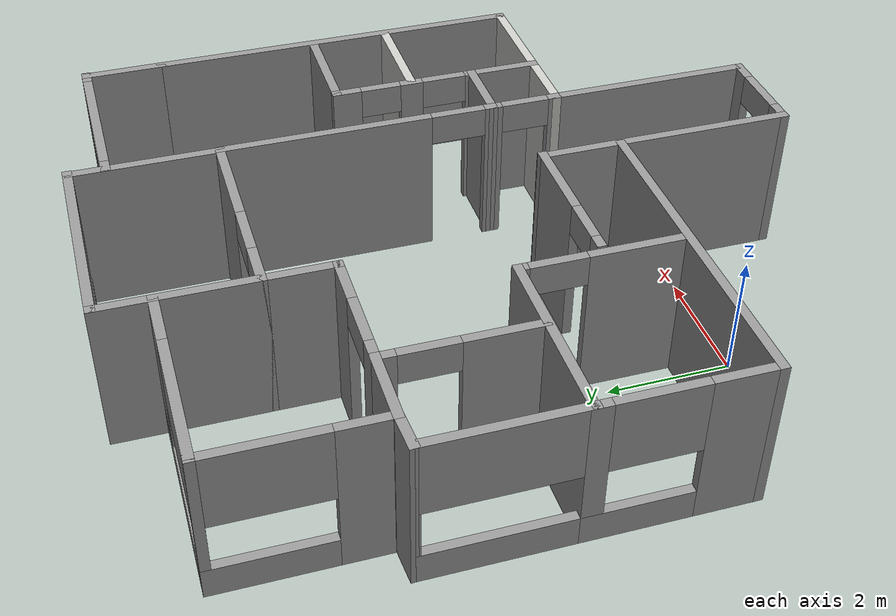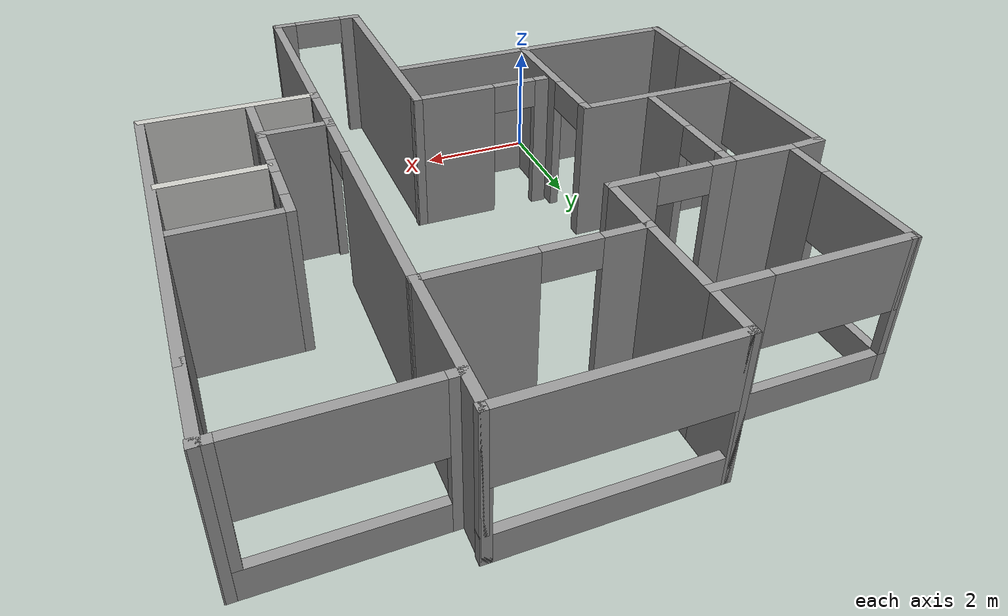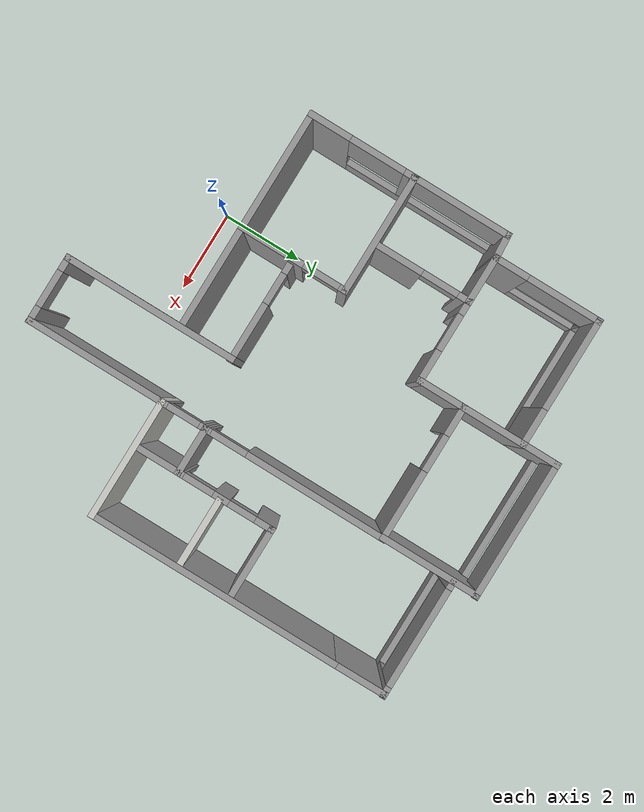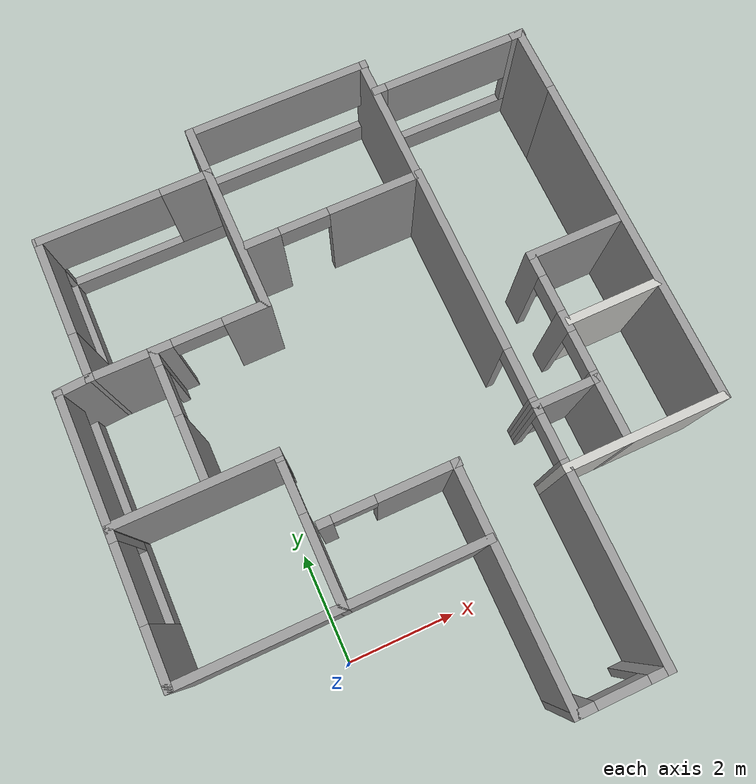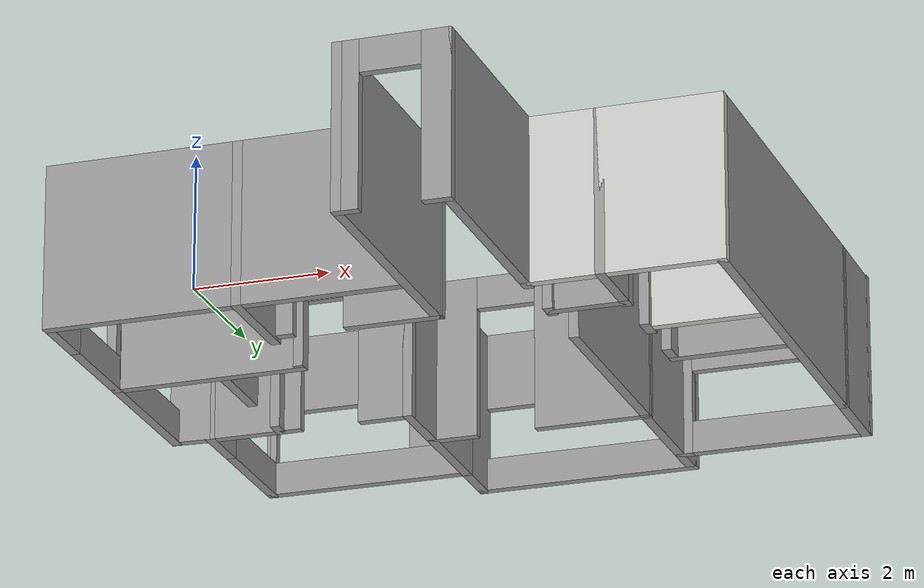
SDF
<?xml version='1.0'?>
<sdf version='1.6'>
  <model name='condo'>
    <pose frame=''>2.37557 3.63232 0 0 -0 0</pose>
    <link name='Wall_10'>
      <collision name='Wall_10_Collision'>
        <geometry>
          <box>
            <size>3 0.15 2.5</size>
          </box>
        </geometry>
        <pose frame=''>0 0 1.25 0 -0 0</pose>
      </collision>
      <visual name='Wall_10_Visual'>
        <pose frame=''>0 0 1.25 0 -0 0</pose>
        <geometry>
          <box>
            <size>3 0.15 2.5</size>
          </box>
        </geometry>
        <material>
          <script>
            <uri>file://media/materials/scripts/gazebo.material</uri>
            <name>Gazebo/CeilingTiled</name>
          </script>
          <ambient>1 1 1 1</ambient>
        </material>
        <meta>
          <layer>0</layer>
        </meta>
      </visual>
      <pose frame=''>3.4729 -2.30371 0 0 -0 3.14159</pose>
    </link>
    <link name='Wall_11'>
      <collision name='Wall_11_Collision'>
        <geometry>
          <box>
            <size>3.48 0.15 2.5</size>
          </box>
        </geometry>
        <pose frame=''>0 0 1.25 0 -0 0</pose>
      </collision>
      <visual name='Wall_11_Visual'>
        <pose frame=''>0 0 1.25 0 -0 0</pose>
        <geometry>
          <box>
            <size>3.48 0.15 2.5</size>
          </box>
        </geometry>
        <material>
          <script>
            <uri>file://media/materials/scripts/gazebo.material</uri>
            <name>Gazebo/Grey</name>
          </script>
          <ambient>1 1 1 1</ambient>
        </material>
        <meta>
          <layer>0</layer>
        </meta>
      </visual>
      <pose frame=''>2.0479 -3.96871 0 0 0 -1.5708</pose>
    </link>
    <link name='Wall_18'>
      <pose frame=''>-4.9021 -1.50371 0 0 -0 1.5708</pose>
      <visual name='Wall_18_Visual_0'>
        <pose frame=''>-0.841968 0 1.25 0 -0 0</pose>
        <geometry>
          <box>
            <size>1.06606 0.15 2.5</size>
          </box>
        </geometry>
        <material>
          <script>
            <uri>file://media/materials/scripts/gazebo.material</uri>
            <name>Gazebo/Grey</name>
          </script>
          <ambient>1 1 1 1</ambient>
        </material>
        <meta>
          <layer>0</layer>
        </meta>
      </visual>
      <collision name='Wall_18_Collision_0'>
        <geometry>
          <box>
            <size>1.06606 0.15 2.5</size>
          </box>
        </geometry>
        <pose frame=''>-0.841968 0 1.25 0 -0 0</pose>
      </collision>
      <visual name='Wall_18_Visual_1'>
        <pose frame=''>0.533032 0 0.25 0 -0 0</pose>
        <geometry>
          <box>
            <size>1.68394 0.15 0.5</size>
          </box>
        </geometry>
        <material>
          <script>
            <uri>file://media/materials/scripts/gazebo.material</uri>
            <name>Gazebo/Grey</name>
          </script>
          <ambient>1 1 1 1</ambient>
        </material>
        <meta>
          <layer>0</layer>
        </meta>
      </visual>
      <collision name='Wall_18_Collision_1'>
        <geometry>
          <box>
            <size>1.68394 0.15 0.5</size>
          </box>
        </geometry>
        <pose frame=''>0.533032 0 0.25 0 -0 0</pose>
      </collision>
      <visual name='Wall_18_Visual_2'>
        <pose frame=''>1.21129 0 1.5 0 -0 0</pose>
        <geometry>
          <box>
            <size>0.327415 0.15 2</size>
          </box>
        </geometry>
        <material>
          <script>
            <uri>file://media/materials/scripts/gazebo.material</uri>
            <name>Gazebo/Grey</name>
          </script>
          <ambient>1 1 1 1</ambient>
        </material>
        <meta>
          <layer>0</layer>
        </meta>
      </visual>
      <collision name='Wall_18_Collision_2'>
        <geometry>
          <box>
            <size>0.327415 0.15 2</size>
          </box>
        </geometry>
        <pose frame=''>1.21129 0 1.5 0 -0 0</pose>
      </collision>
      <visual name='Wall_18_Visual_3'>
        <pose frame=''>0.369324 0 1.9 0 -0 0</pose>
        <geometry>
          <box>
            <size>1.35652 0.15 1.2</size>
          </box>
        </geometry>
        <material>
          <script>
            <uri>file://media/materials/scripts/gazebo.material</uri>
            <name>Gazebo/Grey</name>
          </script>
          <ambient>1 1 1 1</ambient>
        </material>
        <meta>
          <layer>0</layer>
        </meta>
      </visual>
      <collision name='Wall_18_Collision_3'>
        <geometry>
          <box>
            <size>1.35652 0.15 1.2</size>
          </box>
        </geometry>
        <pose frame=''>0.369324 0 1.9 0 -0 0</pose>
      </collision>
    </link>
    <link name='Wall_19'>
      <collision name='Wall_19_Collision'>
        <geometry>
          <box>
            <size>3 0.15 2.5</size>
          </box>
        </geometry>
        <pose frame=''>0 0 1.25 0 -0 0</pose>
      </collision>
      <visual name='Wall_19_Visual'>
        <pose frame=''>0 0 1.25 0 -0 0</pose>
        <geometry>
          <box>
            <size>3 0.15 2.5</size>
          </box>
        </geometry>
        <material>
          <script>
            <uri>file://media/materials/scripts/gazebo.material</uri>
            <name>Gazebo/Grey</name>
          </script>
          <ambient>1 1 1 1</ambient>
        </material>
        <meta>
          <layer>0</layer>
        </meta>
      </visual>
      <pose frame=''>-3.4771 -0.203708 0 0 -0 0</pose>
    </link>
    <link name='Wall_20'>
      <pose frame=''>-2.0521 -1.50371 0 0 0 -1.5708</pose>
      <visual name='Wall_20_Visual_0'>
        <pose frame=''>-1.2625 0 1.25 0 -0 0</pose>
        <geometry>
          <box>
            <size>0.225 0.15 2.5</size>
          </box>
        </geometry>
        <material>
          <script>
            <uri>file://media/materials/scripts/gazebo.material</uri>
            <name>Gazebo/Grey</name>
          </script>
          <ambient>1 1 1 1</ambient>
        </material>
        <meta>
          <layer>0</layer>
        </meta>
      </visual>
      <collision name='Wall_20_Collision_0'>
        <geometry>
          <box>
            <size>0.225 0.15 2.5</size>
          </box>
        </geometry>
        <pose frame=''>-1.2625 0 1.25 0 -0 0</pose>
      </collision>
      <visual name='Wall_20_Visual_1'>
        <pose frame=''>0.5625 0 1.25 0 -0 0</pose>
        <geometry>
          <box>
            <size>1.625 0.15 2.5</size>
          </box>
        </geometry>
        <material>
          <script>
            <uri>file://media/materials/scripts/gazebo.material</uri>
            <name>Gazebo/Grey</name>
          </script>
          <ambient>1 1 1 1</ambient>
        </material>
        <meta>
          <layer>0</layer>
        </meta>
      </visual>
      <collision name='Wall_20_Collision_1'>
        <geometry>
          <box>
            <size>1.625 0.15 2.5</size>
          </box>
        </geometry>
        <pose frame=''>0.5625 0 1.25 0 -0 0</pose>
      </collision>
      <visual name='Wall_20_Visual_2'>
        <pose frame=''>-0.7 0 2.25 0 -0 0</pose>
        <geometry>
          <box>
            <size>0.9 0.15 0.5</size>
          </box>
        </geometry>
        <material>
          <script>
            <uri>file://media/materials/scripts/gazebo.material</uri>
            <name>Gazebo/Grey</name>
          </script>
          <ambient>1 1 1 1</ambient>
        </material>
        <meta>
          <layer>0</layer>
        </meta>
      </visual>
      <collision name='Wall_20_Collision_2'>
        <geometry>
          <box>
            <size>0.9 0.15 0.5</size>
          </box>
        </geometry>
        <pose frame=''>-0.7 0 2.25 0 -0 0</pose>
      </collision>
    </link>
    <link name='Wall_25'>
      <pose frame=''>1.2579 -5.63371 0 0 -0 3.14159</pose>
      <visual name='Wall_25_Visual_0'>
        <pose frame=''>-0.648402 0 1.25 0 -0 0</pose>
        <geometry>
          <box>
            <size>0.433323 0.15 2.5</size>
          </box>
        </geometry>
        <material>
          <script>
            <uri>file://media/materials/scripts/gazebo.material</uri>
            <name>Gazebo/Grey</name>
          </script>
          <ambient>1 1 1 1</ambient>
        </material>
        <meta>
          <layer>0</layer>
        </meta>
      </visual>
      <collision name='Wall_25_Collision_0'>
        <geometry>
          <box>
            <size>0.433323 0.15 2.5</size>
          </box>
        </geometry>
        <pose frame=''>-0.648402 0 1.25 0 -0 0</pose>
      </collision>
      <visual name='Wall_25_Visual_1'>
        <pose frame=''>0.666662 0 1.25 0 -0 0</pose>
        <geometry>
          <box>
            <size>0.396804 0.15 2.5</size>
          </box>
        </geometry>
        <material>
          <script>
            <uri>file://media/materials/scripts/gazebo.material</uri>
            <name>Gazebo/Grey</name>
          </script>
          <ambient>1 1 1 1</ambient>
        </material>
        <meta>
          <layer>0</layer>
        </meta>
      </visual>
      <collision name='Wall_25_Collision_1'>
        <geometry>
          <box>
            <size>0.396804 0.15 2.5</size>
          </box>
        </geometry>
        <pose frame=''>0.666662 0 1.25 0 -0 0</pose>
      </collision>
      <visual name='Wall_25_Visual_2'>
        <pose frame=''>0.01826 0 2.25 0 -0 0</pose>
        <geometry>
          <box>
            <size>0.9 0.15 0.5</size>
          </box>
        </geometry>
        <material>
          <script>
            <uri>file://media/materials/scripts/gazebo.material</uri>
            <name>Gazebo/Grey</name>
          </script>
          <ambient>1 1 1 1</ambient>
        </material>
        <meta>
          <layer>0</layer>
        </meta>
      </visual>
      <collision name='Wall_25_Collision_2'>
        <geometry>
          <box>
            <size>0.9 0.15 0.5</size>
          </box>
        </geometry>
        <pose frame=''>0.01826 0 2.25 0 -0 0</pose>
      </collision>
    </link>
    <link name='Wall_33'>
      <collision name='Wall_33_Collision'>
        <geometry>
          <box>
            <size>4.27005 0.15 2.5</size>
          </box>
        </geometry>
        <pose frame=''>0 0 1.25 0 -0 0</pose>
      </collision>
      <visual name='Wall_33_Visual'>
        <pose frame=''>0 0 1.25 0 -0 0</pose>
        <geometry>
          <box>
            <size>4.27005 0.15 2.5</size>
          </box>
        </geometry>
        <material>
          <script>
            <uri>file://media/materials/scripts/gazebo.material</uri>
            <name>Gazebo/Grey</name>
          </script>
          <ambient>1 1 1 1</ambient>
        </material>
        <meta>
          <layer>0</layer>
        </meta>
      </visual>
      <pose frame=''>0.4679 -3.57371 0 0 -0 1.5708</pose>
    </link>
    <link name='Wall_34'>
      <pose frame=''>-0.6871 -1.51371 0 0 -0 3.14159</pose>
      <visual name='Wall_34_Visual_0'>
        <pose frame=''>-0.509396 0 1.25 0 -0 0</pose>
        <geometry>
          <box>
            <size>1.48121 0.15 2.5</size>
          </box>
        </geometry>
        <material>
          <script>
            <uri>file://media/materials/scripts/gazebo.material</uri>
            <name>Gazebo/Grey</name>
          </script>
          <ambient>1 1 1 1</ambient>
        </material>
        <meta>
          <layer>0</layer>
        </meta>
      </visual>
      <collision name='Wall_34_Collision_0'>
        <geometry>
          <box>
            <size>1.48121 0.15 2.5</size>
          </box>
        </geometry>
        <pose frame=''>-0.509396 0 1.25 0 -0 0</pose>
      </collision>
      <visual name='Wall_34_Visual_1'>
        <pose frame=''>1.1206 0 1.25 0 -0 0</pose>
        <geometry>
          <box>
            <size>0.258792 0.15 2.5</size>
          </box>
        </geometry>
        <material>
          <script>
            <uri>file://media/materials/scripts/gazebo.material</uri>
            <name>Gazebo/Grey</name>
          </script>
          <ambient>1 1 1 1</ambient>
        </material>
        <meta>
          <layer>0</layer>
        </meta>
      </visual>
      <collision name='Wall_34_Collision_1'>
        <geometry>
          <box>
            <size>0.258792 0.15 2.5</size>
          </box>
        </geometry>
        <pose frame=''>1.1206 0 1.25 0 -0 0</pose>
      </collision>
      <visual name='Wall_34_Visual_2'>
        <pose frame=''>0.611208 0 2.25 0 -0 0</pose>
        <geometry>
          <box>
            <size>0.76 0.15 0.5</size>
          </box>
        </geometry>
        <material>
          <script>
            <uri>file://media/materials/scripts/gazebo.material</uri>
            <name>Gazebo/Grey</name>
          </script>
          <ambient>1 1 1 1</ambient>
        </material>
        <meta>
          <layer>0</layer>
        </meta>
      </visual>
      <collision name='Wall_34_Collision_2'>
        <geometry>
          <box>
            <size>0.76 0.15 0.5</size>
          </box>
        </geometry>
        <pose frame=''>0.611208 0 2.25 0 -0 0</pose>
      </collision>
    </link>
    <link name='Wall_40'>
      <collision name='Wall_40_Collision'>
        <geometry>
          <box>
            <size>5.5 0.15 2.5</size>
          </box>
        </geometry>
        <pose frame=''>0 0 1.25 0 -0 0</pose>
      </collision>
      <visual name='Wall_40_Visual'>
        <pose frame=''>0 0 1.25 0 -0 0</pose>
        <geometry>
          <box>
            <size>5.5 0.15 2.5</size>
          </box>
        </geometry>
        <material>
          <script>
            <uri>file://media/materials/scripts/gazebo.material</uri>
            <name>Gazebo/Grey</name>
          </script>
          <ambient>1 1 1 1</ambient>
        </material>
        <meta>
          <layer>0</layer>
        </meta>
      </visual>
      <pose frame=''>-2.2271 -2.80371 0 0 -0 0</pose>
    </link>
    <link name='Wall_43'>
      <pose frame=''>-3.25338 1.00873 0 0 -0 1.5708</pose>
      <visual name='Wall_43_Visual_0'>
        <pose frame=''>-0.625907 0 1.25 0 -0 0</pose>
        <geometry>
          <box>
            <size>1.24819 0.15 2.5</size>
          </box>
        </geometry>
        <material>
          <script>
            <uri>file://media/materials/scripts/gazebo.material</uri>
            <name>Gazebo/Grey</name>
          </script>
          <ambient>1 1 1 1</ambient>
        </material>
        <meta>
          <layer>0</layer>
        </meta>
      </visual>
      <collision name='Wall_43_Collision_0'>
        <geometry>
          <box>
            <size>1.24819 0.15 2.5</size>
          </box>
        </geometry>
        <pose frame=''>-0.625907 0 1.25 0 -0 0</pose>
      </collision>
      <visual name='Wall_43_Visual_1'>
        <pose frame=''>1.07409 0 1.25 0 -0 0</pose>
        <geometry>
          <box>
            <size>0.351813 0.15 2.5</size>
          </box>
        </geometry>
        <material>
          <script>
            <uri>file://media/materials/scripts/gazebo.material</uri>
            <name>Gazebo/Grey</name>
          </script>
          <ambient>1 1 1 1</ambient>
        </material>
        <meta>
          <layer>0</layer>
        </meta>
      </visual>
      <collision name='Wall_43_Collision_1'>
        <geometry>
          <box>
            <size>0.351813 0.15 2.5</size>
          </box>
        </geometry>
        <pose frame=''>1.07409 0 1.25 0 -0 0</pose>
      </collision>
      <visual name='Wall_43_Visual_2'>
        <pose frame=''>0.448187 0 2.25 0 -0 0</pose>
        <geometry>
          <box>
            <size>0.9 0.15 0.5</size>
          </box>
        </geometry>
        <material>
          <script>
            <uri>file://media/materials/scripts/gazebo.material</uri>
            <name>Gazebo/Grey</name>
          </script>
          <ambient>1 1 1 1</ambient>
        </material>
        <meta>
          <layer>0</layer>
        </meta>
      </visual>
      <collision name='Wall_43_Collision_2'>
        <geometry>
          <box>
            <size>0.9 0.15 0.5</size>
          </box>
        </geometry>
        <pose frame=''>0.448187 0 2.25 0 -0 0</pose>
      </collision>
    </link>
    <link name='Wall_44'>
      <collision name='Wall_44_Collision'>
        <geometry>
          <box>
            <size>1.25 0.15 2.5</size>
          </box>
        </geometry>
        <pose frame=''>0 0 1.25 0 -0 0</pose>
      </collision>
      <visual name='Wall_44_Visual'>
        <pose frame=''>0 0 1.25 0 -0 0</pose>
        <geometry>
          <box>
            <size>1.25 0.15 2.5</size>
          </box>
        </geometry>
        <material>
          <script>
            <uri>file://media/materials/scripts/gazebo.material</uri>
            <name>Gazebo/Grey</name>
          </script>
          <ambient>1 1 1 1</ambient>
        </material>
        <meta>
          <layer>0</layer>
        </meta>
      </visual>
      <pose frame=''>-3.80338 2.18373 0 0 -0 3.14159</pose>
    </link>
    <link name='Wall_46'>
      <pose frame=''>-4.35338 3.48373 0 0 -0 1.5708</pose>
      <visual name='Wall_46_Visual_0'>
        <pose frame=''>-0.926993 0 1.25 0 -0 0</pose>
        <geometry>
          <box>
            <size>0.896013 0.15 2.5</size>
          </box>
        </geometry>
        <material>
          <script>
            <uri>file://media/materials/scripts/gazebo.material</uri>
            <name>Gazebo/Grey</name>
          </script>
          <ambient>1 1 1 1</ambient>
        </material>
        <meta>
          <layer>0</layer>
        </meta>
      </visual>
      <collision name='Wall_46_Collision_0'>
        <geometry>
          <box>
            <size>0.896013 0.15 2.5</size>
          </box>
        </geometry>
        <pose frame=''>-0.926993 0 1.25 0 -0 0</pose>
      </collision>
      <visual name='Wall_46_Visual_1'>
        <pose frame=''>0.448007 0 0.25 0 -0 0</pose>
        <geometry>
          <box>
            <size>1.85399 0.15 0.5</size>
          </box>
        </geometry>
        <material>
          <script>
            <uri>file://media/materials/scripts/gazebo.material</uri>
            <name>Gazebo/Grey</name>
          </script>
          <ambient>1 1 1 1</ambient>
        </material>
        <meta>
          <layer>0</layer>
        </meta>
      </visual>
      <collision name='Wall_46_Collision_1'>
        <geometry>
          <box>
            <size>1.85399 0.15 0.5</size>
          </box>
        </geometry>
        <pose frame=''>0.448007 0 0.25 0 -0 0</pose>
      </collision>
      <visual name='Wall_46_Visual_2'>
        <pose frame=''>1.30018 0 1.5 0 -0 0</pose>
        <geometry>
          <box>
            <size>0.149639 0.15 2</size>
          </box>
        </geometry>
        <material>
          <script>
            <uri>file://media/materials/scripts/gazebo.material</uri>
            <name>Gazebo/Grey</name>
          </script>
          <ambient>1 1 1 1</ambient>
        </material>
        <meta>
          <layer>0</layer>
        </meta>
      </visual>
      <collision name='Wall_46_Collision_2'>
        <geometry>
          <box>
            <size>0.149639 0.15 2</size>
          </box>
        </geometry>
        <pose frame=''>1.30018 0 1.5 0 -0 0</pose>
      </collision>
      <visual name='Wall_46_Visual_3'>
        <pose frame=''>0.373187 0 1.9 0 -0 0</pose>
        <geometry>
          <box>
            <size>1.70435 0.15 1.2</size>
          </box>
        </geometry>
        <material>
          <script>
            <uri>file://media/materials/scripts/gazebo.material</uri>
            <name>Gazebo/Grey</name>
          </script>
          <ambient>1 1 1 1</ambient>
        </material>
        <meta>
          <layer>0</layer>
        </meta>
      </visual>
      <collision name='Wall_46_Collision_3'>
        <geometry>
          <box>
            <size>1.70435 0.15 1.2</size>
          </box>
        </geometry>
        <pose frame=''>0.373187 0 1.9 0 -0 0</pose>
      </collision>
    </link>
    <link name='Wall_47'>
      <pose frame=''>-2.80338 4.78373 0 0 -0 0</pose>
      <visual name='Wall_47_Visual_0'>
        <pose frame=''>-1.59969 0 1.25 0 -0 0</pose>
        <geometry>
          <box>
            <size>0.050627 0.15 2.5</size>
          </box>
        </geometry>
        <material>
          <script>
            <uri>file://media/materials/scripts/gazebo.material</uri>
            <name>Gazebo/Grey</name>
          </script>
          <ambient>1 1 1 1</ambient>
        </material>
        <meta>
          <layer>0</layer>
        </meta>
      </visual>
      <collision name='Wall_47_Collision_0'>
        <geometry>
          <box>
            <size>0.050627 0.15 2.5</size>
          </box>
        </geometry>
        <pose frame=''>-1.59969 0 1.25 0 -0 0</pose>
      </collision>
      <visual name='Wall_47_Visual_1'>
        <pose frame=''>0.025314 0 0.25 0 -0 0</pose>
        <geometry>
          <box>
            <size>3.19937 0.15 0.5</size>
          </box>
        </geometry>
        <material>
          <script>
            <uri>file://media/materials/scripts/gazebo.material</uri>
            <name>Gazebo/Grey</name>
          </script>
          <ambient>1 1 1 1</ambient>
        </material>
        <meta>
          <layer>0</layer>
        </meta>
      </visual>
      <collision name='Wall_47_Collision_1'>
        <geometry>
          <box>
            <size>3.19937 0.15 0.5</size>
          </box>
        </geometry>
        <pose frame=''>0.025314 0 0.25 0 -0 0</pose>
      </collision>
      <visual name='Wall_47_Visual_2'>
        <pose frame=''>1.14705 0 1.5 0 -0 0</pose>
        <geometry>
          <box>
            <size>0.955895 0.15 2</size>
          </box>
        </geometry>
        <material>
          <script>
            <uri>file://media/materials/scripts/gazebo.material</uri>
            <name>Gazebo/Grey</name>
          </script>
          <ambient>1 1 1 1</ambient>
        </material>
        <meta>
          <layer>0</layer>
        </meta>
      </visual>
      <collision name='Wall_47_Collision_2'>
        <geometry>
          <box>
            <size>0.955895 0.15 2</size>
          </box>
        </geometry>
        <pose frame=''>1.14705 0 1.5 0 -0 0</pose>
      </collision>
      <visual name='Wall_47_Visual_3'>
        <pose frame=''>-0.452634 0 1.9 0 -0 0</pose>
        <geometry>
          <box>
            <size>2.24348 0.15 1.2</size>
          </box>
        </geometry>
        <material>
          <script>
            <uri>file://media/materials/scripts/gazebo.material</uri>
            <name>Gazebo/Grey</name>
          </script>
          <ambient>1 1 1 1</ambient>
        </material>
        <meta>
          <layer>0</layer>
        </meta>
      </visual>
      <collision name='Wall_47_Collision_3'>
        <geometry>
          <box>
            <size>2.24348 0.15 1.2</size>
          </box>
        </geometry>
        <pose frame=''>-0.452634 0 1.9 0 -0 0</pose>
      </collision>
    </link>
    <link name='Wall_48'>
      <collision name='Wall_48_Collision'>
        <geometry>
          <box>
            <size>2.75 0.15 2.5</size>
          </box>
        </geometry>
        <pose frame=''>0 0 1.25 0 -0 0</pose>
      </collision>
      <visual name='Wall_48_Visual'>
        <pose frame=''>0 0 1.25 0 -0 0</pose>
        <geometry>
          <box>
            <size>2.75 0.15 2.5</size>
          </box>
        </geometry>
        <material>
          <script>
            <uri>file://media/materials/scripts/gazebo.material</uri>
            <name>Gazebo/Grey</name>
          </script>
          <ambient>1 1 1 1</ambient>
        </material>
        <meta>
          <layer>0</layer>
        </meta>
      </visual>
      <pose frame=''>-1.25338 3.48373 0 0 0 -1.5708</pose>
    </link>
    <link name='Wall_49'>
      <pose frame=''>-2.25338 2.18373 0 0 -0 3.14159</pose>
      <visual name='Wall_49_Visual_0'>
        <pose frame=''>-0.653804 0 1.25 0 -0 0</pose>
        <geometry>
          <box>
            <size>0.842391 0.15 2.5</size>
          </box>
        </geometry>
        <material>
          <script>
            <uri>file://media/materials/scripts/gazebo.material</uri>
            <name>Gazebo/Grey</name>
          </script>
          <ambient>1 1 1 1</ambient>
        </material>
        <meta>
          <layer>0</layer>
        </meta>
      </visual>
      <collision name='Wall_49_Collision_0'>
        <geometry>
          <box>
            <size>0.842391 0.15 2.5</size>
          </box>
        </geometry>
        <pose frame=''>-0.653804 0 1.25 0 -0 0</pose>
      </collision>
      <visual name='Wall_49_Visual_1'>
        <pose frame=''>0.871196 0 1.25 0 -0 0</pose>
        <geometry>
          <box>
            <size>0.407609 0.15 2.5</size>
          </box>
        </geometry>
        <material>
          <script>
            <uri>file://media/materials/scripts/gazebo.material</uri>
            <name>Gazebo/Grey</name>
          </script>
          <ambient>1 1 1 1</ambient>
        </material>
        <meta>
          <layer>0</layer>
        </meta>
      </visual>
      <collision name='Wall_49_Collision_1'>
        <geometry>
          <box>
            <size>0.407609 0.15 2.5</size>
          </box>
        </geometry>
        <pose frame=''>0.871196 0 1.25 0 -0 0</pose>
      </collision>
      <visual name='Wall_49_Visual_2'>
        <pose frame=''>0.217391 0 2.25 0 -0 0</pose>
        <geometry>
          <box>
            <size>0.9 0.15 0.5</size>
          </box>
        </geometry>
        <material>
          <script>
            <uri>file://media/materials/scripts/gazebo.material</uri>
            <name>Gazebo/Grey</name>
          </script>
          <ambient>1 1 1 1</ambient>
        </material>
        <meta>
          <layer>0</layer>
        </meta>
      </visual>
      <collision name='Wall_49_Collision_2'>
        <geometry>
          <box>
            <size>0.9 0.15 0.5</size>
          </box>
        </geometry>
        <pose frame=''>0.217391 0 2.25 0 -0 0</pose>
      </collision>
    </link>
    <link name='Wall_67'>
      <collision name='Wall_67_Collision'>
        <geometry>
          <box>
            <size>1 0.15 2.5</size>
          </box>
        </geometry>
        <pose frame=''>0 0 1.25 0 -0 0</pose>
      </collision>
      <visual name='Wall_67_Visual'>
        <pose frame=''>0 0 1.25 0 -0 0</pose>
        <geometry>
          <box>
            <size>1 0.15 2.5</size>
          </box>
        </geometry>
        <material>
          <script>
            <uri>file://media/materials/scripts/gazebo.material</uri>
            <name>Gazebo/Grey</name>
          </script>
          <ambient>1 1 1 1</ambient>
        </material>
        <meta>
          <layer>0</layer>
        </meta>
      </visual>
      <pose frame=''>-1.25338 5.20873 0 0 -0 1.5708</pose>
    </link>
    <link name='Wall_68'>
      <pose frame=''>0.40097 5.63373 0 0 -0 0</pose>
      <visual name='Wall_68_Visual_0'>
        <pose frame=''>-1.68012 0 1.25 0 -0 0</pose>
        <geometry>
          <box>
            <size>0.098453 0.15 2.5</size>
          </box>
        </geometry>
        <material>
          <script>
            <uri>file://media/materials/scripts/gazebo.material</uri>
            <name>Gazebo/Grey</name>
          </script>
          <ambient>1 1 1 1</ambient>
        </material>
        <meta>
          <layer>0</layer>
        </meta>
      </visual>
      <collision name='Wall_68_Collision_0'>
        <geometry>
          <box>
            <size>0.098453 0.15 2.5</size>
          </box>
        </geometry>
        <pose frame=''>-1.68012 0 1.25 0 -0 0</pose>
      </collision>
      <visual name='Wall_68_Visual_1'>
        <pose frame=''>0.049227 0 0.25 0 -0 0</pose>
        <geometry>
          <box>
            <size>3.36024 0.15 0.5</size>
          </box>
        </geometry>
        <material>
          <script>
            <uri>file://media/materials/scripts/gazebo.material</uri>
            <name>Gazebo/Grey</name>
          </script>
          <ambient>1 1 1 1</ambient>
        </material>
        <meta>
          <layer>0</layer>
        </meta>
      </visual>
      <collision name='Wall_68_Collision_1'>
        <geometry>
          <box>
            <size>3.36024 0.15 0.5</size>
          </box>
        </geometry>
        <pose frame=''>0.049227 0 0.25 0 -0 0</pose>
      </collision>
      <visual name='Wall_68_Visual_2'>
        <pose frame=''>1.66662 0 1.5 0 -0 0</pose>
        <geometry>
          <box>
            <size>0.12546 0.15 2</size>
          </box>
        </geometry>
        <material>
          <script>
            <uri>file://media/materials/scripts/gazebo.material</uri>
            <name>Gazebo/Grey</name>
          </script>
          <ambient>1 1 1 1</ambient>
        </material>
        <meta>
          <layer>0</layer>
        </meta>
      </visual>
      <collision name='Wall_68_Collision_2'>
        <geometry>
          <box>
            <size>0.12546 0.15 2</size>
          </box>
        </geometry>
        <pose frame=''>1.66662 0 1.5 0 -0 0</pose>
      </collision>
      <visual name='Wall_68_Visual_3'>
        <pose frame=''>-0.013503 0 1.9 0 -0 0</pose>
        <geometry>
          <box>
            <size>3.23478 0.15 1.2</size>
          </box>
        </geometry>
        <material>
          <script>
            <uri>file://media/materials/scripts/gazebo.material</uri>
            <name>Gazebo/Grey</name>
          </script>
          <ambient>1 1 1 1</ambient>
        </material>
        <meta>
          <layer>0</layer>
        </meta>
      </visual>
      <collision name='Wall_68_Collision_3'>
        <geometry>
          <box>
            <size>3.23478 0.15 1.2</size>
          </box>
        </geometry>
        <pose frame=''>-0.013503 0 1.9 0 -0 0</pose>
      </collision>
    </link>
    <link name='Wall_69'>
      <collision name='Wall_69_Collision'>
        <geometry>
          <box>
            <size>2.5 0.15 2.5</size>
          </box>
        </geometry>
        <pose frame=''>0 0 1.25 0 -0 0</pose>
      </collision>
      <visual name='Wall_69_Visual'>
        <pose frame=''>0 0 1.25 0 -0 0</pose>
        <geometry>
          <box>
            <size>2.5 0.15 2.5</size>
          </box>
        </geometry>
        <material>
          <script>
            <uri>file://media/materials/scripts/gazebo.material</uri>
            <name>Gazebo/Grey</name>
          </script>
          <ambient>1 1 1 1</ambient>
        </material>
        <meta>
          <layer>0</layer>
        </meta>
      </visual>
      <pose frame=''>2.03793 4.45873 0 0 0 -1.5708</pose>
    </link>
    <link name='Wall_70'>
      <pose frame=''>0.40097 3.28373 0 0 -0 3.14159</pose>
      <visual name='Wall_70_Visual_0'>
        <pose frame=''>-0.84116 0 1.25 0 -0 0</pose>
        <geometry>
          <box>
            <size>1.77638 0.15 2.5</size>
          </box>
        </geometry>
        <material>
          <script>
            <uri>file://media/materials/scripts/gazebo.material</uri>
            <name>Gazebo/Grey</name>
          </script>
          <ambient>1 1 1 1</ambient>
        </material>
        <meta>
          <layer>0</layer>
        </meta>
      </visual>
      <collision name='Wall_70_Collision_0'>
        <geometry>
          <box>
            <size>1.77638 0.15 2.5</size>
          </box>
        </geometry>
        <pose frame=''>-0.84116 0 1.25 0 -0 0</pose>
      </collision>
      <visual name='Wall_70_Visual_1'>
        <pose frame=''>1.33819 0 1.25 0 -0 0</pose>
        <geometry>
          <box>
            <size>0.782321 0.15 2.5</size>
          </box>
        </geometry>
        <material>
          <script>
            <uri>file://media/materials/scripts/gazebo.material</uri>
            <name>Gazebo/Grey</name>
          </script>
          <ambient>1 1 1 1</ambient>
        </material>
        <meta>
          <layer>0</layer>
        </meta>
      </visual>
      <collision name='Wall_70_Collision_1'>
        <geometry>
          <box>
            <size>0.782321 0.15 2.5</size>
          </box>
        </geometry>
        <pose frame=''>1.33819 0 1.25 0 -0 0</pose>
      </collision>
      <visual name='Wall_70_Visual_2'>
        <pose frame=''>0.497027 0 2.25 0 -0 0</pose>
        <geometry>
          <box>
            <size>0.9 0.15 0.5</size>
          </box>
        </geometry>
        <material>
          <script>
            <uri>file://media/materials/scripts/gazebo.material</uri>
            <name>Gazebo/Grey</name>
          </script>
          <ambient>1 1 1 1</ambient>
        </material>
        <meta>
          <layer>0</layer>
        </meta>
      </visual>
      <collision name='Wall_70_Collision_2'>
        <geometry>
          <box>
            <size>0.9 0.15 0.5</size>
          </box>
        </geometry>
        <pose frame=''>0.497027 0 2.25 0 -0 0</pose>
      </collision>
    </link>
    <link name='Wall_75'>
      <pose frame=''>2.0479 -1.75371 0 0 -0 1.5708</pose>
      <visual name='Wall_75_Visual_0'>
        <pose frame=''>-0.514795 0 1.25 0 -0 0</pose>
        <geometry>
          <box>
            <size>0.220411 0.15 2.5</size>
          </box>
        </geometry>
        <material>
          <script>
            <uri>file://media/materials/scripts/gazebo.material</uri>
            <name>Gazebo/Grey</name>
          </script>
          <ambient>1 1 1 1</ambient>
        </material>
        <meta>
          <layer>0</layer>
        </meta>
      </visual>
      <collision name='Wall_75_Collision_0'>
        <geometry>
          <box>
            <size>0.220411 0.15 2.5</size>
          </box>
        </geometry>
        <pose frame=''>-0.514795 0 1.25 0 -0 0</pose>
      </collision>
      <visual name='Wall_75_Visual_1'>
        <pose frame=''>0.508031 0 1.25 0 -0 0</pose>
        <geometry>
          <box>
            <size>0.233937 0.15 2.5</size>
          </box>
        </geometry>
        <material>
          <script>
            <uri>file://media/materials/scripts/gazebo.material</uri>
            <name>Gazebo/Grey</name>
          </script>
          <ambient>1 1 1 1</ambient>
        </material>
        <meta>
          <layer>0</layer>
        </meta>
      </visual>
      <collision name='Wall_75_Collision_1'>
        <geometry>
          <box>
            <size>0.233937 0.15 2.5</size>
          </box>
        </geometry>
        <pose frame=''>0.508031 0 1.25 0 -0 0</pose>
      </collision>
      <visual name='Wall_75_Visual_2'>
        <pose frame=''>-0.006763 0 2.25 0 -0 0</pose>
        <geometry>
          <box>
            <size>0.795652 0.15 0.5</size>
          </box>
        </geometry>
        <material>
          <script>
            <uri>file://media/materials/scripts/gazebo.material</uri>
            <name>Gazebo/Grey</name>
          </script>
          <ambient>1 1 1 1</ambient>
        </material>
        <meta>
          <layer>0</layer>
        </meta>
      </visual>
      <collision name='Wall_75_Collision_2'>
        <geometry>
          <box>
            <size>0.795652 0.15 0.5</size>
          </box>
        </geometry>
        <pose frame=''>-0.006763 0 2.25 0 -0 0</pose>
      </collision>
    </link>
    <link name='Wall_76'>
      <collision name='Wall_76_Collision'>
        <geometry>
          <box>
            <size>1.25 0.15 2.5</size>
          </box>
        </geometry>
        <pose frame=''>0 0 1.25 0 -0 0</pose>
      </collision>
      <visual name='Wall_76_Visual'>
        <pose frame=''>0 0 1.25 0 -0 0</pose>
        <geometry>
          <box>
            <size>1.25 0.15 2.5</size>
          </box>
        </geometry>
        <material>
          <script>
            <uri>file://media/materials/scripts/gazebo.material</uri>
            <name>Gazebo/Grey</name>
          </script>
          <ambient>1 1 1 1</ambient>
        </material>
        <meta>
          <layer>0</layer>
        </meta>
      </visual>
      <pose frame=''>2.5979 -1.20371 0 0 -0 0</pose>
    </link>
    <link name='Wall_77'>
      <collision name='Wall_77_Collision'>
        <geometry>
          <box>
            <size>1.25 0.15 2.5</size>
          </box>
        </geometry>
        <pose frame=''>0 0 1.25 0 -0 0</pose>
      </collision>
      <visual name='Wall_77_Visual'>
        <pose frame=''>0 0 1.25 0 -0 0</pose>
        <geometry>
          <box>
            <size>1.25 0.15 2.5</size>
          </box>
        </geometry>
        <material>
          <script>
            <uri>file://media/materials/scripts/gazebo.material</uri>
            <name>Gazebo/Grey</name>
          </script>
          <ambient>1 1 1 1</ambient>
        </material>
        <meta>
          <layer>0</layer>
        </meta>
      </visual>
      <pose frame=''>3.1479 -1.75371 0 0 0 -1.5708</pose>
    </link>
    <link name='Wall_8'>
      <collision name='Wall_8_Collision'>
        <geometry>
          <box>
            <size>6.25 0.15 2.5</size>
          </box>
        </geometry>
        <pose frame=''>0 0 1.25 0 -0 0</pose>
      </collision>
      <visual name='Wall_8_Visual'>
        <pose frame=''>0 0 1.25 0 -0 0</pose>
        <geometry>
          <box>
            <size>6.25 0.15 2.5</size>
          </box>
        </geometry>
        <material>
          <script>
            <uri>file://media/materials/scripts/gazebo.material</uri>
            <name>Gazebo/Grey</name>
          </script>
          <ambient>1 1 1 1</ambient>
        </material>
        <meta>
          <layer>0</layer>
        </meta>
      </visual>
      <pose frame=''>4.8979 0.746292 0 0 0 -1.5708</pose>
    </link>
    <link name='Wall_80'>
      <pose frame=''>2.05161 1.04001 0 0 0 -1.57245</pose>
      <visual name='Wall_80_Visual_0'>
        <pose frame=''>-0.558039 0 1.25 0 -0 0</pose>
        <geometry>
          <box>
            <size>3.52137 0.15 2.5</size>
          </box>
        </geometry>
        <material>
          <script>
            <uri>file://media/materials/scripts/gazebo.material</uri>
            <name>Gazebo/Grey</name>
          </script>
          <ambient>1 1 1 1</ambient>
        </material>
        <meta>
          <layer>0</layer>
        </meta>
      </visual>
      <collision name='Wall_80_Collision_0'>
        <geometry>
          <box>
            <size>3.52137 0.15 2.5</size>
          </box>
        </geometry>
        <pose frame=''>-0.558039 0 1.25 0 -0 0</pose>
      </collision>
      <visual name='Wall_80_Visual_1'>
        <pose frame=''>2.21068 0 1.25 0 -0 0</pose>
        <geometry>
          <box>
            <size>0.216077 0.15 2.5</size>
          </box>
        </geometry>
        <material>
          <script>
            <uri>file://media/materials/scripts/gazebo.material</uri>
            <name>Gazebo/Grey</name>
          </script>
          <ambient>1 1 1 1</ambient>
        </material>
        <meta>
          <layer>0</layer>
        </meta>
      </visual>
      <collision name='Wall_80_Collision_1'>
        <geometry>
          <box>
            <size>0.216077 0.15 2.5</size>
          </box>
        </geometry>
        <pose frame=''>2.21068 0 1.25 0 -0 0</pose>
      </collision>
      <visual name='Wall_80_Visual_2'>
        <pose frame=''>1.65265 0 2.25 0 -0 0</pose>
        <geometry>
          <box>
            <size>0.9 0.15 0.5</size>
          </box>
        </geometry>
        <material>
          <script>
            <uri>file://media/materials/scripts/gazebo.material</uri>
            <name>Gazebo/Grey</name>
          </script>
          <ambient>1 1 1 1</ambient>
        </material>
        <meta>
          <layer>0</layer>
        </meta>
      </visual>
      <collision name='Wall_80_Collision_2'>
        <geometry>
          <box>
            <size>0.9 0.15 0.5</size>
          </box>
        </geometry>
        <pose frame=''>1.65265 0 2.25 0 -0 0</pose>
      </collision>
    </link>
    <link name='Wall_82'>
      <pose frame=''>3.48203 5.05692 0 0 -0 0</pose>
      <visual name='Wall_82_Visual_0'>
        <pose frame=''>-1.36685 0 1.25 0 -0 0</pose>
        <geometry>
          <box>
            <size>0.266304 0.15 2.5</size>
          </box>
        </geometry>
        <material>
          <script>
            <uri>file://media/materials/scripts/gazebo.material</uri>
            <name>Gazebo/Grey</name>
          </script>
          <ambient>1 1 1 1</ambient>
        </material>
        <meta>
          <layer>0</layer>
        </meta>
      </visual>
      <collision name='Wall_82_Collision_0'>
        <geometry>
          <box>
            <size>0.266304 0.15 2.5</size>
          </box>
        </geometry>
        <pose frame=''>-1.36685 0 1.25 0 -0 0</pose>
      </collision>
      <visual name='Wall_82_Visual_1'>
        <pose frame=''>0.133152 0 0.25 0 -0 0</pose>
        <geometry>
          <box>
            <size>2.7337 0.15 0.5</size>
          </box>
        </geometry>
        <material>
          <script>
            <uri>file://media/materials/scripts/gazebo.material</uri>
            <name>Gazebo/Grey</name>
          </script>
          <ambient>1 1 1 1</ambient>
        </material>
        <meta>
          <layer>0</layer>
        </meta>
      </visual>
      <collision name='Wall_82_Collision_1'>
        <geometry>
          <box>
            <size>2.7337 0.15 0.5</size>
          </box>
        </geometry>
        <pose frame=''>0.133152 0 0.25 0 -0 0</pose>
      </collision>
      <visual name='Wall_82_Visual_2'>
        <pose frame=''>1.35924 0 1.5 0 -0 0</pose>
        <geometry>
          <box>
            <size>0.281522 0.15 2</size>
          </box>
        </geometry>
        <material>
          <script>
            <uri>file://media/materials/scripts/gazebo.material</uri>
            <name>Gazebo/Grey</name>
          </script>
          <ambient>1 1 1 1</ambient>
        </material>
        <meta>
          <layer>0</layer>
        </meta>
      </visual>
      <collision name='Wall_82_Collision_2'>
        <geometry>
          <box>
            <size>0.281522 0.15 2</size>
          </box>
        </geometry>
        <pose frame=''>1.35924 0 1.5 0 -0 0</pose>
      </collision>
      <visual name='Wall_82_Visual_3'>
        <pose frame=''>-0.007609 0 1.9 0 -0 0</pose>
        <geometry>
          <box>
            <size>2.45217 0.15 1.2</size>
          </box>
        </geometry>
        <material>
          <script>
            <uri>file://media/materials/scripts/gazebo.material</uri>
            <name>Gazebo/Grey</name>
          </script>
          <ambient>1 1 1 1</ambient>
        </material>
        <meta>
          <layer>0</layer>
        </meta>
      </visual>
      <collision name='Wall_82_Collision_3'>
        <geometry>
          <box>
            <size>2.45217 0.15 1.2</size>
          </box>
        </geometry>
        <pose frame=''>-0.007609 0 1.9 0 -0 0</pose>
      </collision>
    </link>
    <link name='Wall_83'>
      <collision name='Wall_83_Collision'>
        <geometry>
          <box>
            <size>1.41139 0.15 2.5</size>
          </box>
        </geometry>
        <pose frame=''>0 0 1.25 0 -0 0</pose>
      </collision>
      <visual name='Wall_83_Visual'>
        <pose frame=''>0 0 1.25 0 -0 0</pose>
        <geometry>
          <box>
            <size>1.41139 0.15 2.5</size>
          </box>
        </geometry>
        <material>
          <script>
            <uri>file://media/materials/scripts/gazebo.material</uri>
            <name>Gazebo/Grey</name>
          </script>
          <ambient>1 1 1 1</ambient>
        </material>
        <meta>
          <layer>0</layer>
        </meta>
      </visual>
      <pose frame=''>4.89377 4.42661 0 0 0 -1.56424</pose>
    </link>
    <link name='Wall_86'>
      <pose frame=''>3.1479 -0.028708 0 0 -0 1.5708</pose>
      <visual name='Wall_86_Visual_0'>
        <pose frame=''>-1.14632 0 1.25 0 -0 0</pose>
        <geometry>
          <box>
            <size>0.207367 0.15 2.5</size>
          </box>
        </geometry>
        <material>
          <script>
            <uri>file://media/materials/scripts/gazebo.material</uri>
            <name>Gazebo/Grey</name>
          </script>
          <ambient>1 1 1 1</ambient>
        </material>
        <meta>
          <layer>0</layer>
        </meta>
      </visual>
      <collision name='Wall_86_Collision_0'>
        <geometry>
          <box>
            <size>0.207367 0.15 2.5</size>
          </box>
        </geometry>
        <pose frame=''>-1.14632 0 1.25 0 -0 0</pose>
      </collision>
      <visual name='Wall_86_Visual_1'>
        <pose frame=''>-0.105676 0 1.25 0 -0 0</pose>
        <geometry>
          <box>
            <size>0.386957 0.15 2.5</size>
          </box>
        </geometry>
        <material>
          <script>
            <uri>file://media/materials/scripts/gazebo.material</uri>
            <name>Gazebo/Grey</name>
          </script>
          <ambient>1 1 1 1</ambient>
        </material>
        <meta>
          <layer>0</layer>
        </meta>
      </visual>
      <collision name='Wall_86_Collision_1'>
        <geometry>
          <box>
            <size>0.386957 0.15 2.5</size>
          </box>
        </geometry>
        <pose frame=''>-0.105676 0 1.25 0 -0 0</pose>
      </collision>
      <visual name='Wall_86_Visual_2'>
        <pose frame=''>1.00586 0 1.25 0 -0 0</pose>
        <geometry>
          <box>
            <size>0.488285 0.15 2.5</size>
          </box>
        </geometry>
        <material>
          <script>
            <uri>file://media/materials/scripts/gazebo.material</uri>
            <name>Gazebo/Grey</name>
          </script>
          <ambient>1 1 1 1</ambient>
        </material>
        <meta>
          <layer>0</layer>
        </meta>
      </visual>
      <collision name='Wall_86_Collision_2'>
        <geometry>
          <box>
            <size>0.488285 0.15 2.5</size>
          </box>
        </geometry>
        <pose frame=''>1.00586 0 1.25 0 -0 0</pose>
      </collision>
      <visual name='Wall_86_Visual_3'>
        <pose frame=''>-0.670894 0 2.25 0 -0 0</pose>
        <geometry>
          <box>
            <size>0.743478 0.15 0.5</size>
          </box>
        </geometry>
        <material>
          <script>
            <uri>file://media/materials/scripts/gazebo.material</uri>
            <name>Gazebo/Grey</name>
          </script>
          <ambient>1 1 1 1</ambient>
        </material>
        <meta>
          <layer>0</layer>
        </meta>
      </visual>
      <collision name='Wall_86_Collision_3'>
        <geometry>
          <box>
            <size>0.743478 0.15 0.5</size>
          </box>
        </geometry>
        <pose frame=''>-0.670894 0 2.25 0 -0 0</pose>
      </collision>
      <visual name='Wall_86_Visual_4'>
        <pose frame=''>0.424759 0 2.25 0 -0 0</pose>
        <geometry>
          <box>
            <size>0.673913 0.15 0.5</size>
          </box>
        </geometry>
        <material>
          <script>
            <uri>file://media/materials/scripts/gazebo.material</uri>
            <name>Gazebo/Grey</name>
          </script>
          <ambient>1 1 1 1</ambient>
        </material>
        <meta>
          <layer>0</layer>
        </meta>
      </visual>
      <collision name='Wall_86_Collision_4'>
        <geometry>
          <box>
            <size>0.673913 0.15 0.5</size>
          </box>
        </geometry>
        <pose frame=''>0.424759 0 2.25 0 -0 0</pose>
      </collision>
    </link>
    <link name='Wall_87'>
      <collision name='Wall_87_Collision'>
        <geometry>
          <box>
            <size>1.75 0.15 2.5</size>
          </box>
        </geometry>
        <pose frame=''>0 0 1.25 0 -0 0</pose>
      </collision>
      <visual name='Wall_87_Visual'>
        <pose frame=''>0 0 1.25 0 -0 0</pose>
        <geometry>
          <box>
            <size>1.75 0.15 2.5</size>
          </box>
        </geometry>
        <material>
          <script>
            <uri>file://media/materials/scripts/gazebo.material</uri>
            <name>Gazebo/Grey</name>
          </script>
          <ambient>1 1 1 1</ambient>
        </material>
        <meta>
          <layer>0</layer>
        </meta>
      </visual>
      <pose frame=''>3.9479 1.14629 0 0 -0 0</pose>
    </link>
    <link name='Wall_89'>
      <collision name='Wall_89_Collision'>
        <geometry>
          <box>
            <size>1.75 0.15 2.5</size>
          </box>
        </geometry>
        <pose frame=''>0 0 1.25 0 -0 0</pose>
      </collision>
      <visual name='Wall_89_Visual'>
        <pose frame=''>0 0 1.25 0 -0 0</pose>
        <geometry>
          <box>
            <size>1.75 0.15 2.5</size>
          </box>
        </geometry>
        <material>
          <script>
            <uri>file://media/materials/scripts/gazebo.material</uri>
            <name>Gazebo/CeilingTiled</name>
          </script>
          <ambient>1 1 1 1</ambient>
        </material>
        <meta>
          <layer>0</layer>
        </meta>
      </visual>
      <pose frame=''>4.02225 -0.14308 0 0 -0 0</pose>
    </link>
    <link name='Wall_91'>
      <pose frame=''>-4.9021 0.9539 0 0 -0 1.5708</pose>
      <visual name='Wall_91_Visual_0'>
        <pose frame=''>-1.18219 0 1.25 0 -0 0</pose>
        <geometry>
          <box>
            <size>0.135628 0.15 2.5</size>
          </box>
        </geometry>
        <material>
          <script>
            <uri>file://media/materials/scripts/gazebo.material</uri>
            <name>Gazebo/Grey</name>
          </script>
          <ambient>1 1 1 1</ambient>
        </material>
        <meta>
          <layer>0</layer>
        </meta>
      </visual>
      <collision name='Wall_91_Collision_0'>
        <geometry>
          <box>
            <size>0.135628 0.15 2.5</size>
          </box>
        </geometry>
        <pose frame=''>-1.18219 0 1.25 0 -0 0</pose>
      </collision>
      <visual name='Wall_91_Visual_1'>
        <pose frame=''>0.067814 0 0.25 0 -0 0</pose>
        <geometry>
          <box>
            <size>2.36437 0.15 0.5</size>
          </box>
        </geometry>
        <material>
          <script>
            <uri>file://media/materials/scripts/gazebo.material</uri>
            <name>Gazebo/Grey</name>
          </script>
          <ambient>1 1 1 1</ambient>
        </material>
        <meta>
          <layer>0</layer>
        </meta>
      </visual>
      <collision name='Wall_91_Collision_1'>
        <geometry>
          <box>
            <size>2.36437 0.15 0.5</size>
          </box>
        </geometry>
        <pose frame=''>0.067814 0 0.25 0 -0 0</pose>
      </collision>
      <visual name='Wall_91_Visual_2'>
        <pose frame=''>1.19825 0 1.5 0 -0 0</pose>
        <geometry>
          <box>
            <size>0.103502 0.15 2</size>
          </box>
        </geometry>
        <material>
          <script>
            <uri>file://media/materials/scripts/gazebo.material</uri>
            <name>Gazebo/Grey</name>
          </script>
          <ambient>1 1 1 1</ambient>
        </material>
        <meta>
          <layer>0</layer>
        </meta>
      </visual>
      <collision name='Wall_91_Collision_2'>
        <geometry>
          <box>
            <size>0.103502 0.15 2</size>
          </box>
        </geometry>
        <pose frame=''>1.19825 0 1.5 0 -0 0</pose>
      </collision>
      <visual name='Wall_91_Visual_3'>
        <pose frame=''>0.016063 0 1.9 0 -0 0</pose>
        <geometry>
          <box>
            <size>2.26087 0.15 1.2</size>
          </box>
        </geometry>
        <material>
          <script>
            <uri>file://media/materials/scripts/gazebo.material</uri>
            <name>Gazebo/Grey</name>
          </script>
          <ambient>1 1 1 1</ambient>
        </material>
        <meta>
          <layer>0</layer>
        </meta>
      </visual>
      <collision name='Wall_91_Collision_3'>
        <geometry>
          <box>
            <size>2.26087 0.15 1.2</size>
          </box>
        </geometry>
        <pose frame=''>0.016063 0 1.9 0 -0 0</pose>
      </collision>
    </link>
    <link name='Wall_92'>
      <collision name='Wall_92_Collision'>
        <geometry>
          <box>
            <size>0.699998 0.15 2.5</size>
          </box>
        </geometry>
        <pose frame=''>0 0 1.25 0 -0 0</pose>
      </collision>
      <visual name='Wall_92_Visual'>
        <pose frame=''>0 0 1.25 0 -0 0</pose>
        <geometry>
          <box>
            <size>0.699998 0.15 2.5</size>
          </box>
        </geometry>
        <material>
          <script>
            <uri>file://media/materials/scripts/gazebo.material</uri>
            <name>Gazebo/Grey</name>
          </script>
          <ambient>1 1 1 1</ambient>
        </material>
        <meta>
          <layer>0</layer>
        </meta>
      </visual>
      <pose frame=''>-4.62774 2.16501 0 0 -0 0.068127</pose>
    </link>
    <static>1</static>
  </model>
</sdf>
